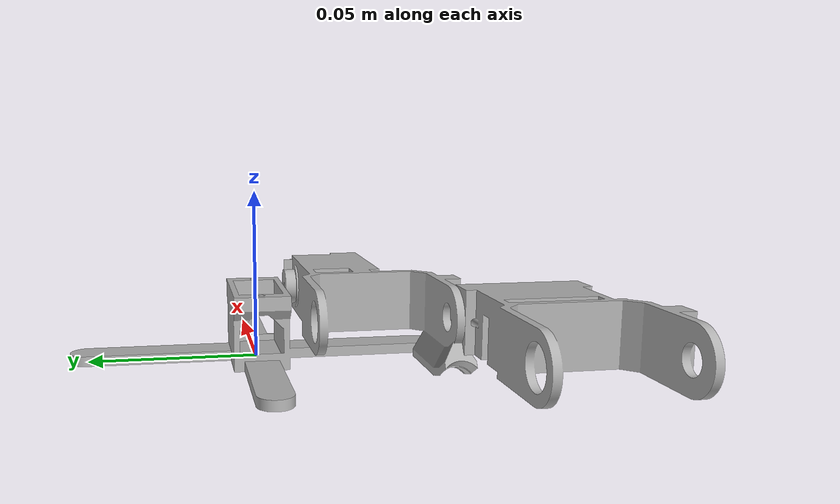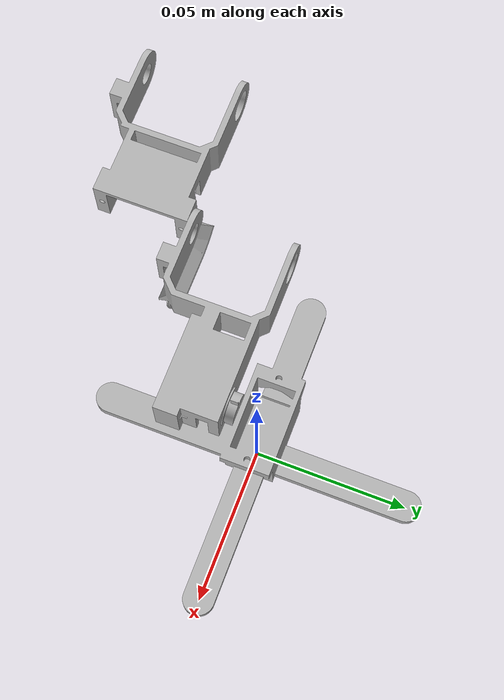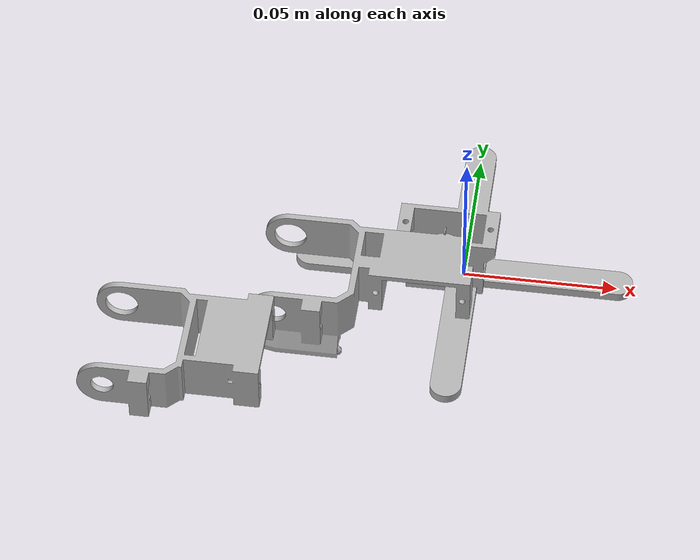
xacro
<?xml version="1.0" ?>
<robot name="(Nicht" xmlns:xacro="http://www.ros.org/wiki/xacro">

<xacro:include filename="$(find (Nicht_description)/urdf/materials.xacro" />
<xacro:include filename="$(find (Nicht_description)/urdf/(Nicht.trans" />
<xacro:include filename="$(find (Nicht_description)/urdf/(Nicht.gazebo" />
<link name="base_link">
  <inertial>
    <origin xyz="-0.001790888956705833 5.198855970783829e-16 0.005081280353570841" rpy="0 0 0"/>
    <mass value="0.06973734855496082"/>
    <inertia ixx="2.9e-05" iyy="3e-05" izz="5.3e-05" ixy="-0.0" iyz="0.0" ixz="1e-06"/>
  </inertial>
  <visual>
    <origin xyz="0 0 0" rpy="0 0 0"/>
    <geometry>
      <mesh filename="file://$(find (Nicht_description)/meshes/base_link.stl" scale="0.001 0.001 0.001"/>
    </geometry>
    <material name="silver"/>
  </visual>
  <collision>
    <origin xyz="0 0 0" rpy="0 0 0"/>
    <geometry>
      <mesh filename="file://$(find (Nicht_description)/meshes/base_link.stl" scale="0.001 0.001 0.001"/>
    </geometry>
  </collision>
</link>

<link name="MGArmSprint_v1_1">
  <inertial>
    <origin xyz="-0.022653401703002903 -0.018821031057272345 -0.00048217386530529163" rpy="0 0 0"/>
    <mass value="0.08330869614867872"/>
    <inertia ixx="1.7e-05" iyy="3e-05" izz="4.1e-05" ixy="-9e-06" iyz="-2e-06" ixz="-3e-06"/>
  </inertial>
  <visual>
    <origin xyz="0.0055 0.008 -0.0222" rpy="0 0 0"/>
    <geometry>
      <mesh filename="file://$(find (Nicht_description)/meshes/MGArmSprint_v1_1.stl" scale="0.001 0.001 0.001"/>
    </geometry>
    <material name="silver"/>
  </visual>
  <collision>
    <origin xyz="0.0055 0.008 -0.0222" rpy="0 0 0"/>
    <geometry>
      <mesh filename="file://$(find (Nicht_description)/meshes/MGArmSprint_v1_1.stl" scale="0.001 0.001 0.001"/>
    </geometry>
  </collision>
</link>

<link name="MGArmFront_v1_1">
  <inertial>
    <origin xyz="-0.018054824326861757 -0.018647230418994104 0.0009453273792752494" rpy="0 0 0"/>
    <mass value="0.05087504179859737"/>
    <inertia ixx="1e-05" iyy="1.1e-05" izz="1.9e-05" ixy="-2e-06" iyz="-0.0" ixz="-1e-06"/>
  </inertial>
  <visual>
    <origin xyz="0.059 0.0445 -0.02243" rpy="0 0 0"/>
    <geometry>
      <mesh filename="file://$(find (Nicht_description)/meshes/MGArmFront_v1_1.stl" scale="0.001 0.001 0.001"/>
    </geometry>
    <material name="silver"/>
  </visual>
  <collision>
    <origin xyz="0.059 0.0445 -0.02243" rpy="0 0 0"/>
    <geometry>
      <mesh filename="file://$(find (Nicht_description)/meshes/MGArmFront_v1_1.stl" scale="0.001 0.001 0.001"/>
    </geometry>
  </collision>
</link>

<joint name="Umdrehung 5" type="continuous">
  <origin xyz="-0.0055 -0.008 0.0222" rpy="0 0 0"/>
  <parent link="base_link"/>
  <child link="MGArmSprint_v1_1"/>
  <axis xyz="0.0 -1.0 0.0"/>
</joint>

<joint name="Umdrehung 6" type="continuous">
  <origin xyz="-0.0535 -0.0365 0.00023" rpy="0 0 0"/>
  <parent link="MGArmSprint_v1_1"/>
  <child link="MGArmFront_v1_1"/>
  <axis xyz="0.0 -1.0 0.0"/>
</joint>

</robot>

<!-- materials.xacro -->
<robot name="(Nicht" xmlns:xacro="http://www.ros.org/wiki/xacro" >

<material name="silver">
  <color rgba="0.700 0.700 0.700 1.000"/>
</material>

</robot>

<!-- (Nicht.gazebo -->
<robot name="(Nicht" xmlns:xacro="http://www.ros.org/wiki/xacro" >

<xacro:property name="body_color" value="Gazebo/Silver" />

<gazebo>
  <plugin name="control" filename="libgazebo_ros_control.so"/>
</gazebo>
<gazebo reference="base_link">
  <material>${body_color}</material>
  <mu1>0.2</mu1>
  <mu2>0.2</mu2>
  <self_collide>true</self_collide>
  <gravity>true</gravity>
</gazebo>

<gazebo reference="MGArmSprint_v1_1">
  <material>${body_color}</material>
  <mu1>0.2</mu1>
  <mu2>0.2</mu2>
  <self_collide>true</self_collide>
</gazebo>

<gazebo reference="MGArmFront_v1_1">
  <material>${body_color}</material>
  <mu1>0.2</mu1>
  <mu2>0.2</mu2>
  <self_collide>true</self_collide>
</gazebo>

</robot>
